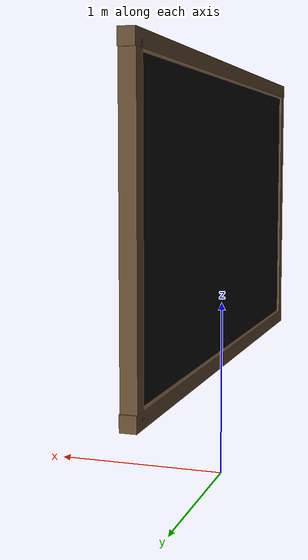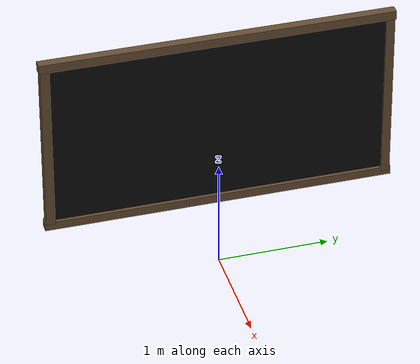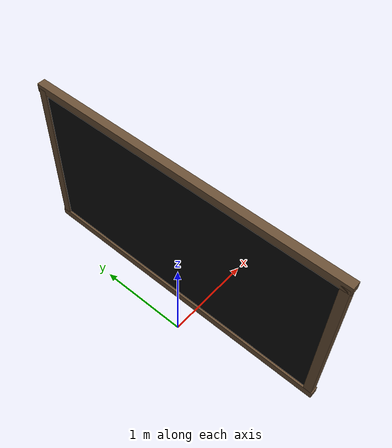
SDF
<?xml version="1.0"?>
<sdf version="1.9">
  <model name="blackboard">
    <static>true</static>
    <link name="link">
      <!-- Blackboard surface -->
      <visual name="board_visual">
        <pose>0 0 1.5 0 0 0</pose>
        <geometry>
          <box>
            <size>0.05 3.0 1.5</size>
          </box>
        </geometry>
        <material>
          <ambient>0.05 0.05 0.05 1</ambient>
          <diffuse>0.05 0.05 0.05 1</diffuse>
        </material>
      </visual>
      <collision name="board_collision">
        <pose>0 0 1.5 0 0 0</pose>
        <geometry>
          <box>
            <size>0.05 3.0 1.5</size>
          </box>
        </geometry>
      </collision>

      <!-- Frame top -->
      <visual name="frame_top_visual">
        <pose>0 0 2.3 0 0 0</pose>
        <geometry>
          <box>
            <size>0.08 3.1 0.08</size>
          </box>
        </geometry>
        <material>
          <ambient>0.4 0.3 0.2 1</ambient>
          <diffuse>0.4 0.3 0.2 1</diffuse>
        </material>
      </visual>

      <!-- Frame bottom -->
      <visual name="frame_bottom_visual">
        <pose>0 0 0.7 0 0 0</pose>
        <geometry>
          <box>
            <size>0.08 3.1 0.08</size>
          </box>
        </geometry>
        <material>
          <ambient>0.4 0.3 0.2 1</ambient>
          <diffuse>0.4 0.3 0.2 1</diffuse>
        </material>
      </visual>

      <!-- Frame left -->
      <visual name="frame_left_visual">
        <pose>0 -1.5 1.5 0 0 0</pose>
        <geometry>
          <box>
            <size>0.08 0.08 1.6</size>
          </box>
        </geometry>
        <material>
          <ambient>0.4 0.3 0.2 1</ambient>
          <diffuse>0.4 0.3 0.2 1</diffuse>
        </material>
      </visual>

      <!-- Frame right -->
      <visual name="frame_right_visual">
        <pose>0 1.5 1.5 0 0 0</pose>
        <geometry>
          <box>
            <size>0.08 0.08 1.6</size>
          </box>
        </geometry>
        <material>
          <ambient>0.4 0.3 0.2 1</ambient>
          <diffuse>0.4 0.3 0.2 1</diffuse>
        </material>
      </visual>
    </link>
  </model>
</sdf>
